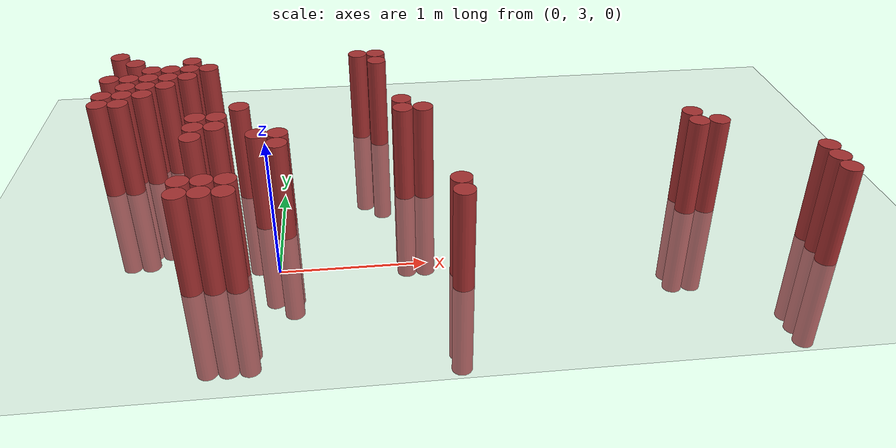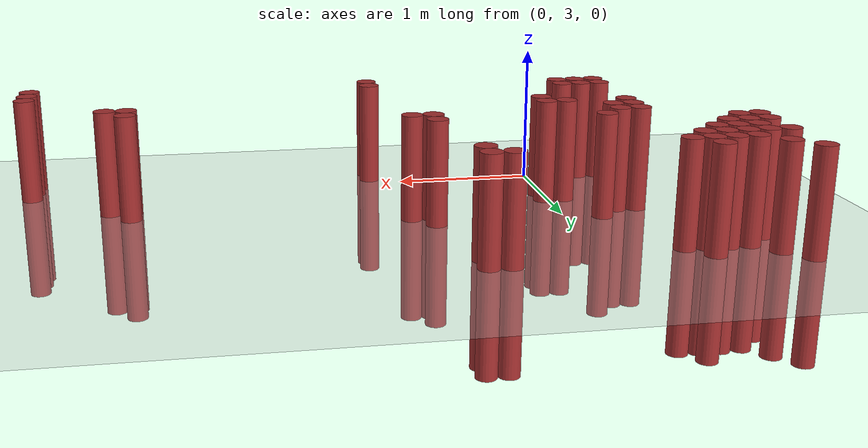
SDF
<sdf version="1.6">
 <world name="default">
  <model name="ground_plane">
   <static>1</static>
   <link name="link">
    <collision name="collision">
     <geometry><plane><normal>0 0 1</normal><size>100 100</size></plane></geometry>
     <surface><friction><ode><mu>100</mu><mu2>50</mu2></ode></friction></surface>
    </collision>
    <visual name="visual">
     <cast_shadows>0</cast_shadows>
     <geometry><plane><normal>0 0 1</normal><size>100 100</size></plane></geometry>
     <material>
      <script><uri>file://media/materials/scripts/gazebo.material</uri><name>Gazebo/Grey</name></script>
     </material>
    </visual>
   </link>
  </model>
  <model name="unit_cylinder_314">
   <static>1</static>
   <pose>-1.325000 4.225000 0.000000 0.000000 0.000000 0.000000</pose>
   <link name="link">
    <inertial>
     <mass>1</mass>
     <inertia><ixx>0.145833</ixx><ixy>0</ixy><ixz>0</ixz><iyy>0.145833</iyy><iyz>0</iyz><izz>0.125</izz></inertia>
    </inertial>
    <collision name="collision">
     <geometry><cylinder><radius>0.075000</radius><length>1.5</length></cylinder></geometry>
    </collision>
    <visual name="visual">
     <geometry><cylinder><radius>0.075000</radius><length>1.5</length></cylinder></geometry>
     <material>
      <ambient>0.648000 0.192000 0.192000 1</ambient>
      <diffuse>0.648000 0.192000 0.192000 1</diffuse>
     </material>
     <material>
      <script><name>Gazebo/Grey</name><uri>file://media/materials/scripts/gazebo.material</uri></script>
     </material>
    </visual>
   </link>
  </model>
  <model name="unit_cylinder_315">
   <static>1</static>
   <pose>-1.325000 4.375000 0.000000 0.000000 0.000000 0.000000</pose>
   <link name="link">
    <inertial>
     <mass>1</mass>
     <inertia><ixx>0.145833</ixx><ixy>0</ixy><ixz>0</ixz><iyy>0.145833</iyy><iyz>0</iyz><izz>0.125</izz></inertia>
    </inertial>
    <collision name="collision">
     <geometry><cylinder><radius>0.075000</radius><length>1.5</length></cylinder></geometry>
    </collision>
    <visual name="visual">
     <geometry><cylinder><radius>0.075000</radius><length>1.5</length></cylinder></geometry>
     <material>
      <ambient>0.648000 0.192000 0.192000 1</ambient>
      <diffuse>0.648000 0.192000 0.192000 1</diffuse>
     </material>
     <material>
      <script><name>Gazebo/Grey</name><uri>file://media/materials/scripts/gazebo.material</uri></script>
     </material>
    </visual>
   </link>
  </model>
  <model name="unit_cylinder_316">
   <static>1</static>
   <pose>-1.325000 4.675000 0.000000 0.000000 0.000000 0.000000</pose>
   <link name="link">
    <inertial>
     <mass>1</mass>
     <inertia><ixx>0.145833</ixx><ixy>0</ixy><ixz>0</ixz><iyy>0.145833</iyy><iyz>0</iyz><izz>0.125</izz></inertia>
    </inertial>
    <collision name="collision">
     <geometry><cylinder><radius>0.075000</radius><length>1.5</length></cylinder></geometry>
    </collision>
    <visual name="visual">
     <geometry><cylinder><radius>0.075000</radius><length>1.5</length></cylinder></geometry>
     <material>
      <ambient>0.648000 0.192000 0.192000 1</ambient>
      <diffuse>0.648000 0.192000 0.192000 1</diffuse>
     </material>
     <material>
      <script><name>Gazebo/Grey</name><uri>file://media/materials/scripts/gazebo.material</uri></script>
     </material>
    </visual>
   </link>
  </model>
  <model name="unit_cylinder_317">
   <static>1</static>
   <pose>-1.325000 5.125000 0.000000 0.000000 0.000000 0.000000</pose>
   <link name="link">
    <inertial>
     <mass>1</mass>
     <inertia><ixx>0.145833</ixx><ixy>0</ixy><ixz>0</ixz><iyy>0.145833</iyy><iyz>0</iyz><izz>0.125</izz></inertia>
    </inertial>
    <collision name="collision">
     <geometry><cylinder><radius>0.075000</radius><length>1.5</length></cylinder></geometry>
    </collision>
    <visual name="visual">
     <geometry><cylinder><radius>0.075000</radius><length>1.5</length></cylinder></geometry>
     <material>
      <ambient>0.648000 0.192000 0.192000 1</ambient>
      <diffuse>0.648000 0.192000 0.192000 1</diffuse>
     </material>
     <material>
      <script><name>Gazebo/Grey</name><uri>file://media/materials/scripts/gazebo.material</uri></script>
     </material>
    </visual>
   </link>
  </model>
  <model name="unit_cylinder_320">
   <static>1</static>
   <pose>-1.175000 4.225000 0.000000 0.000000 0.000000 0.000000</pose>
   <link name="link">
    <inertial>
     <mass>1</mass>
     <inertia><ixx>0.145833</ixx><ixy>0</ixy><ixz>0</ixz><iyy>0.145833</iyy><iyz>0</iyz><izz>0.125</izz></inertia>
    </inertial>
    <collision name="collision">
     <geometry><cylinder><radius>0.075000</radius><length>1.5</length></cylinder></geometry>
    </collision>
    <visual name="visual">
     <geometry><cylinder><radius>0.075000</radius><length>1.5</length></cylinder></geometry>
     <material>
      <ambient>0.648000 0.192000 0.192000 1</ambient>
      <diffuse>0.648000 0.192000 0.192000 1</diffuse>
     </material>
     <material>
      <script><name>Gazebo/Grey</name><uri>file://media/materials/scripts/gazebo.material</uri></script>
     </material>
    </visual>
   </link>
  </model>
  <model name="unit_cylinder_321">
   <static>1</static>
   <pose>-1.175000 4.375000 0.000000 0.000000 0.000000 0.000000</pose>
   <link name="link">
    <inertial>
     <mass>1</mass>
     <inertia><ixx>0.145833</ixx><ixy>0</ixy><ixz>0</ixz><iyy>0.145833</iyy><iyz>0</iyz><izz>0.125</izz></inertia>
    </inertial>
    <collision name="collision">
     <geometry><cylinder><radius>0.075000</radius><length>1.5</length></cylinder></geometry>
    </collision>
    <visual name="visual">
     <geometry><cylinder><radius>0.075000</radius><length>1.5</length></cylinder></geometry>
     <material>
      <ambient>0.648000 0.192000 0.192000 1</ambient>
      <diffuse>0.648000 0.192000 0.192000 1</diffuse>
     </material>
     <material>
      <script><name>Gazebo/Grey</name><uri>file://media/materials/scripts/gazebo.material</uri></script>
     </material>
    </visual>
   </link>
  </model>
  <model name="unit_cylinder_322">
   <static>1</static>
   <pose>-1.175000 4.525000 0.000000 0.000000 0.000000 0.000000</pose>
   <link name="link">
    <inertial>
     <mass>1</mass>
     <inertia><ixx>0.145833</ixx><ixy>0</ixy><ixz>0</ixz><iyy>0.145833</iyy><iyz>0</iyz><izz>0.125</izz></inertia>
    </inertial>
    <collision name="collision">
     <geometry><cylinder><radius>0.075000</radius><length>1.5</length></cylinder></geometry>
    </collision>
    <visual name="visual">
     <geometry><cylinder><radius>0.075000</radius><length>1.5</length></cylinder></geometry>
     <material>
      <ambient>0.648000 0.192000 0.192000 1</ambient>
      <diffuse>0.648000 0.192000 0.192000 1</diffuse>
     </material>
     <material>
      <script><name>Gazebo/Grey</name><uri>file://media/materials/scripts/gazebo.material</uri></script>
     </material>
    </visual>
   </link>
  </model>
  <model name="unit_cylinder_323">
   <static>1</static>
   <pose>-1.175000 4.675000 0.000000 0.000000 0.000000 0.000000</pose>
   <link name="link">
    <inertial>
     <mass>1</mass>
     <inertia><ixx>0.145833</ixx><ixy>0</ixy><ixz>0</ixz><iyy>0.145833</iyy><iyz>0</iyz><izz>0.125</izz></inertia>
    </inertial>
    <collision name="collision">
     <geometry><cylinder><radius>0.075000</radius><length>1.5</length></cylinder></geometry>
    </collision>
    <visual name="visual">
     <geometry><cylinder><radius>0.075000</radius><length>1.5</length></cylinder></geometry>
     <material>
      <ambient>0.648000 0.192000 0.192000 1</ambient>
      <diffuse>0.648000 0.192000 0.192000 1</diffuse>
     </material>
     <material>
      <script><name>Gazebo/Grey</name><uri>file://media/materials/scripts/gazebo.material</uri></script>
     </material>
    </visual>
   </link>
  </model>
  <model name="unit_cylinder_324">
   <static>1</static>
   <pose>-1.175000 4.975000 0.000000 0.000000 0.000000 0.000000</pose>
   <link name="link">
    <inertial>
     <mass>1</mass>
     <inertia><ixx>0.145833</ixx><ixy>0</ixy><ixz>0</ixz><iyy>0.145833</iyy><iyz>0</iyz><izz>0.125</izz></inertia>
    </inertial>
    <collision name="collision">
     <geometry><cylinder><radius>0.075000</radius><length>1.5</length></cylinder></geometry>
    </collision>
    <visual name="visual">
     <geometry><cylinder><radius>0.075000</radius><length>1.5</length></cylinder></geometry>
     <material>
      <ambient>0.648000 0.192000 0.192000 1</ambient>
      <diffuse>0.648000 0.192000 0.192000 1</diffuse>
     </material>
     <material>
      <script><name>Gazebo/Grey</name><uri>file://media/materials/scripts/gazebo.material</uri></script>
     </material>
    </visual>
   </link>
  </model>
  <model name="unit_cylinder_326">
   <static>1</static>
   <pose>-1.025000 4.375000 0.000000 0.000000 0.000000 0.000000</pose>
   <link name="link">
    <inertial>
     <mass>1</mass>
     <inertia><ixx>0.145833</ixx><ixy>0</ixy><ixz>0</ixz><iyy>0.145833</iyy><iyz>0</iyz><izz>0.125</izz></inertia>
    </inertial>
    <collision name="collision">
     <geometry><cylinder><radius>0.075000</radius><length>1.5</length></cylinder></geometry>
    </collision>
    <visual name="visual">
     <geometry><cylinder><radius>0.075000</radius><length>1.5</length></cylinder></geometry>
     <material>
      <ambient>0.648000 0.192000 0.192000 1</ambient>
      <diffuse>0.648000 0.192000 0.192000 1</diffuse>
     </material>
     <material>
      <script><name>Gazebo/Grey</name><uri>file://media/materials/scripts/gazebo.material</uri></script>
     </material>
    </visual>
   </link>
  </model>
  <model name="unit_cylinder_327">
   <static>1</static>
   <pose>-1.025000 4.525000 0.000000 0.000000 0.000000 0.000000</pose>
   <link name="link">
    <inertial>
     <mass>1</mass>
     <inertia><ixx>0.145833</ixx><ixy>0</ixy><ixz>0</ixz><iyy>0.145833</iyy><iyz>0</iyz><izz>0.125</izz></inertia>
    </inertial>
    <collision name="collision">
     <geometry><cylinder><radius>0.075000</radius><length>1.5</length></cylinder></geometry>
    </collision>
    <visual name="visual">
     <geometry><cylinder><radius>0.075000</radius><length>1.5</length></cylinder></geometry>
     <material>
      <ambient>0.648000 0.192000 0.192000 1</ambient>
      <diffuse>0.648000 0.192000 0.192000 1</diffuse>
     </material>
     <material>
      <script><name>Gazebo/Grey</name><uri>file://media/materials/scripts/gazebo.material</uri></script>
     </material>
    </visual>
   </link>
  </model>
  <model name="unit_cylinder_328">
   <static>1</static>
   <pose>-1.025000 4.675000 0.000000 0.000000 0.000000 0.000000</pose>
   <link name="link">
    <inertial>
     <mass>1</mass>
     <inertia><ixx>0.145833</ixx><ixy>0</ixy><ixz>0</ixz><iyy>0.145833</iyy><iyz>0</iyz><izz>0.125</izz></inertia>
    </inertial>
    <collision name="collision">
     <geometry><cylinder><radius>0.075000</radius><length>1.5</length></cylinder></geometry>
    </collision>
    <visual name="visual">
     <geometry><cylinder><radius>0.075000</radius><length>1.5</length></cylinder></geometry>
     <material>
      <ambient>0.648000 0.192000 0.192000 1</ambient>
      <diffuse>0.648000 0.192000 0.192000 1</diffuse>
     </material>
     <material>
      <script><name>Gazebo/Grey</name><uri>file://media/materials/scripts/gazebo.material</uri></script>
     </material>
    </visual>
   </link>
  </model>
  <model name="unit_cylinder_329">
   <static>1</static>
   <pose>-1.025000 4.825000 0.000000 0.000000 0.000000 0.000000</pose>
   <link name="link">
    <inertial>
     <mass>1</mass>
     <inertia><ixx>0.145833</ixx><ixy>0</ixy><ixz>0</ixz><iyy>0.145833</iyy><iyz>0</iyz><izz>0.125</izz></inertia>
    </inertial>
    <collision name="collision">
     <geometry><cylinder><radius>0.075000</radius><length>1.5</length></cylinder></geometry>
    </collision>
    <visual name="visual">
     <geometry><cylinder><radius>0.075000</radius><length>1.5</length></cylinder></geometry>
     <material>
      <ambient>0.648000 0.192000 0.192000 1</ambient>
      <diffuse>0.648000 0.192000 0.192000 1</diffuse>
     </material>
     <material>
      <script><name>Gazebo/Grey</name><uri>file://media/materials/scripts/gazebo.material</uri></script>
     </material>
    </visual>
   </link>
  </model>
  <model name="unit_cylinder_331">
   <static>1</static>
   <pose>-0.875000 4.525000 0.000000 0.000000 0.000000 0.000000</pose>
   <link name="link">
    <inertial>
     <mass>1</mass>
     <inertia><ixx>0.145833</ixx><ixy>0</ixy><ixz>0</ixz><iyy>0.145833</iyy><iyz>0</iyz><izz>0.125</izz></inertia>
    </inertial>
    <collision name="collision">
     <geometry><cylinder><radius>0.075000</radius><length>1.5</length></cylinder></geometry>
    </collision>
    <visual name="visual">
     <geometry><cylinder><radius>0.075000</radius><length>1.5</length></cylinder></geometry>
     <material>
      <ambient>0.648000 0.192000 0.192000 1</ambient>
      <diffuse>0.648000 0.192000 0.192000 1</diffuse>
     </material>
     <material>
      <script><name>Gazebo/Grey</name><uri>file://media/materials/scripts/gazebo.material</uri></script>
     </material>
    </visual>
   </link>
  </model>
  <model name="unit_cylinder_332">
   <static>1</static>
   <pose>-0.875000 4.675000 0.000000 0.000000 0.000000 0.000000</pose>
   <link name="link">
    <inertial>
     <mass>1</mass>
     <inertia><ixx>0.145833</ixx><ixy>0</ixy><ixz>0</ixz><iyy>0.145833</iyy><iyz>0</iyz><izz>0.125</izz></inertia>
    </inertial>
    <collision name="collision">
     <geometry><cylinder><radius>0.075000</radius><length>1.5</length></cylinder></geometry>
    </collision>
    <visual name="visual">
     <geometry><cylinder><radius>0.075000</radius><length>1.5</length></cylinder></geometry>
     <material>
      <ambient>0.648000 0.192000 0.192000 1</ambient>
      <diffuse>0.648000 0.192000 0.192000 1</diffuse>
     </material>
     <material>
      <script><name>Gazebo/Grey</name><uri>file://media/materials/scripts/gazebo.material</uri></script>
     </material>
    </visual>
   </link>
  </model>
  <model name="unit_cylinder_333">
   <static>1</static>
   <pose>-0.875000 4.825000 0.000000 0.000000 0.000000 0.000000</pose>
   <link name="link">
    <inertial>
     <mass>1</mass>
     <inertia><ixx>0.145833</ixx><ixy>0</ixy><ixz>0</ixz><iyy>0.145833</iyy><iyz>0</iyz><izz>0.125</izz></inertia>
    </inertial>
    <collision name="collision">
     <geometry><cylinder><radius>0.075000</radius><length>1.5</length></cylinder></geometry>
    </collision>
    <visual name="visual">
     <geometry><cylinder><radius>0.075000</radius><length>1.5</length></cylinder></geometry>
     <material>
      <ambient>0.648000 0.192000 0.192000 1</ambient>
      <diffuse>0.648000 0.192000 0.192000 1</diffuse>
     </material>
     <material>
      <script><name>Gazebo/Grey</name><uri>file://media/materials/scripts/gazebo.material</uri></script>
     </material>
    </visual>
   </link>
  </model>
  <model name="unit_cylinder_334">
   <static>1</static>
   <pose>-0.725000 4.675000 0.000000 0.000000 0.000000 0.000000</pose>
   <link name="link">
    <inertial>
     <mass>1</mass>
     <inertia><ixx>0.145833</ixx><ixy>0</ixy><ixz>0</ixz><iyy>0.145833</iyy><iyz>0</iyz><izz>0.125</izz></inertia>
    </inertial>
    <collision name="collision">
     <geometry><cylinder><radius>0.075000</radius><length>1.5</length></cylinder></geometry>
    </collision>
    <visual name="visual">
     <geometry><cylinder><radius>0.075000</radius><length>1.5</length></cylinder></geometry>
     <material>
      <ambient>0.648000 0.192000 0.192000 1</ambient>
      <diffuse>0.648000 0.192000 0.192000 1</diffuse>
     </material>
     <material>
      <script><name>Gazebo/Grey</name><uri>file://media/materials/scripts/gazebo.material</uri></script>
     </material>
    </visual>
   </link>
  </model>
  <model name="unit_cylinder_335">
   <static>1</static>
   <pose>-0.725000 4.825000 0.000000 0.000000 0.000000 0.000000</pose>
   <link name="link">
    <inertial>
     <mass>1</mass>
     <inertia><ixx>0.145833</ixx><ixy>0</ixy><ixz>0</ixz><iyy>0.145833</iyy><iyz>0</iyz><izz>0.125</izz></inertia>
    </inertial>
    <collision name="collision">
     <geometry><cylinder><radius>0.075000</radius><length>1.5</length></cylinder></geometry>
    </collision>
    <visual name="visual">
     <geometry><cylinder><radius>0.075000</radius><length>1.5</length></cylinder></geometry>
     <material>
      <ambient>0.648000 0.192000 0.192000 1</ambient>
      <diffuse>0.648000 0.192000 0.192000 1</diffuse>
     </material>
     <material>
      <script><name>Gazebo/Grey</name><uri>file://media/materials/scripts/gazebo.material</uri></script>
     </material>
    </visual>
   </link>
  </model>
  <model name="unit_cylinder_336">
   <static>1</static>
   <pose>-0.725000 4.975000 0.000000 0.000000 0.000000 0.000000</pose>
   <link name="link">
    <inertial>
     <mass>1</mass>
     <inertia><ixx>0.145833</ixx><ixy>0</ixy><ixz>0</ixz><iyy>0.145833</iyy><iyz>0</iyz><izz>0.125</izz></inertia>
    </inertial>
    <collision name="collision">
     <geometry><cylinder><radius>0.075000</radius><length>1.5</length></cylinder></geometry>
    </collision>
    <visual name="visual">
     <geometry><cylinder><radius>0.075000</radius><length>1.5</length></cylinder></geometry>
     <material>
      <ambient>0.648000 0.192000 0.192000 1</ambient>
      <diffuse>0.648000 0.192000 0.192000 1</diffuse>
     </material>
     <material>
      <script><name>Gazebo/Grey</name><uri>file://media/materials/scripts/gazebo.material</uri></script>
     </material>
    </visual>
   </link>
  </model>
  <model name="unit_cylinder_337">
   <static>1</static>
   <pose>-0.575000 2.875000 0.000000 0.000000 0.000000 0.000000</pose>
   <link name="link">
    <inertial>
     <mass>1</mass>
     <inertia><ixx>0.145833</ixx><ixy>0</ixy><ixz>0</ixz><iyy>0.145833</iyy><iyz>0</iyz><izz>0.125</izz></inertia>
    </inertial>
    <collision name="collision">
     <geometry><cylinder><radius>0.075000</radius><length>1.5</length></cylinder></geometry>
    </collision>
    <visual name="visual">
     <geometry><cylinder><radius>0.075000</radius><length>1.5</length></cylinder></geometry>
     <material>
      <ambient>0.648000 0.192000 0.192000 1</ambient>
      <diffuse>0.648000 0.192000 0.192000 1</diffuse>
     </material>
     <material>
      <script><name>Gazebo/Grey</name><uri>file://media/materials/scripts/gazebo.material</uri></script>
     </material>
    </visual>
   </link>
  </model>
  <model name="unit_cylinder_338">
   <static>1</static>
   <pose>-0.575000 3.025000 0.000000 0.000000 0.000000 0.000000</pose>
   <link name="link">
    <inertial>
     <mass>1</mass>
     <inertia><ixx>0.145833</ixx><ixy>0</ixy><ixz>0</ixz><iyy>0.145833</iyy><iyz>0</iyz><izz>0.125</izz></inertia>
    </inertial>
    <collision name="collision">
     <geometry><cylinder><radius>0.075000</radius><length>1.5</length></cylinder></geometry>
    </collision>
    <visual name="visual">
     <geometry><cylinder><radius>0.075000</radius><length>1.5</length></cylinder></geometry>
     <material>
      <ambient>0.648000 0.192000 0.192000 1</ambient>
      <diffuse>0.648000 0.192000 0.192000 1</diffuse>
     </material>
     <material>
      <script><name>Gazebo/Grey</name><uri>file://media/materials/scripts/gazebo.material</uri></script>
     </material>
    </visual>
   </link>
  </model>
  <model name="unit_cylinder_339">
   <static>1</static>
   <pose>-0.575000 3.625000 0.000000 0.000000 0.000000 0.000000</pose>
   <link name="link">
    <inertial>
     <mass>1</mass>
     <inertia><ixx>0.145833</ixx><ixy>0</ixy><ixz>0</ixz><iyy>0.145833</iyy><iyz>0</iyz><izz>0.125</izz></inertia>
    </inertial>
    <collision name="collision">
     <geometry><cylinder><radius>0.075000</radius><length>1.5</length></cylinder></geometry>
    </collision>
    <visual name="visual">
     <geometry><cylinder><radius>0.075000</radius><length>1.5</length></cylinder></geometry>
     <material>
      <ambient>0.648000 0.192000 0.192000 1</ambient>
      <diffuse>0.648000 0.192000 0.192000 1</diffuse>
     </material>
     <material>
      <script><name>Gazebo/Grey</name><uri>file://media/materials/scripts/gazebo.material</uri></script>
     </material>
    </visual>
   </link>
  </model>
  <model name="unit_cylinder_340">
   <static>1</static>
   <pose>-0.575000 3.775000 0.000000 0.000000 0.000000 0.000000</pose>
   <link name="link">
    <inertial>
     <mass>1</mass>
     <inertia><ixx>0.145833</ixx><ixy>0</ixy><ixz>0</ixz><iyy>0.145833</iyy><iyz>0</iyz><izz>0.125</izz></inertia>
    </inertial>
    <collision name="collision">
     <geometry><cylinder><radius>0.075000</radius><length>1.5</length></cylinder></geometry>
    </collision>
    <visual name="visual">
     <geometry><cylinder><radius>0.075000</radius><length>1.5</length></cylinder></geometry>
     <material>
      <ambient>0.648000 0.192000 0.192000 1</ambient>
      <diffuse>0.648000 0.192000 0.192000 1</diffuse>
     </material>
     <material>
      <script><name>Gazebo/Grey</name><uri>file://media/materials/scripts/gazebo.material</uri></script>
     </material>
    </visual>
   </link>
  </model>
  <model name="unit_cylinder_341">
   <static>1</static>
   <pose>-0.575000 3.925000 0.000000 0.000000 0.000000 0.000000</pose>
   <link name="link">
    <inertial>
     <mass>1</mass>
     <inertia><ixx>0.145833</ixx><ixy>0</ixy><ixz>0</ixz><iyy>0.145833</iyy><iyz>0</iyz><izz>0.125</izz></inertia>
    </inertial>
    <collision name="collision">
     <geometry><cylinder><radius>0.075000</radius><length>1.5</length></cylinder></geometry>
    </collision>
    <visual name="visual">
     <geometry><cylinder><radius>0.075000</radius><length>1.5</length></cylinder></geometry>
     <material>
      <ambient>0.648000 0.192000 0.192000 1</ambient>
      <diffuse>0.648000 0.192000 0.192000 1</diffuse>
     </material>
     <material>
      <script><name>Gazebo/Grey</name><uri>file://media/materials/scripts/gazebo.material</uri></script>
     </material>
    </visual>
   </link>
  </model>
  <model name="unit_cylinder_342">
   <static>1</static>
   <pose>-0.575000 4.825000 0.000000 0.000000 0.000000 0.000000</pose>
   <link name="link">
    <inertial>
     <mass>1</mass>
     <inertia><ixx>0.145833</ixx><ixy>0</ixy><ixz>0</ixz><iyy>0.145833</iyy><iyz>0</iyz><izz>0.125</izz></inertia>
    </inertial>
    <collision name="collision">
     <geometry><cylinder><radius>0.075000</radius><length>1.5</length></cylinder></geometry>
    </collision>
    <visual name="visual">
     <geometry><cylinder><radius>0.075000</radius><length>1.5</length></cylinder></geometry>
     <material>
      <ambient>0.648000 0.192000 0.192000 1</ambient>
      <diffuse>0.648000 0.192000 0.192000 1</diffuse>
     </material>
     <material>
      <script><name>Gazebo/Grey</name><uri>file://media/materials/scripts/gazebo.material</uri></script>
     </material>
    </visual>
   </link>
  </model>
  <model name="unit_cylinder_343">
   <static>1</static>
   <pose>-0.425000 2.875000 0.000000 0.000000 0.000000 0.000000</pose>
   <link name="link">
    <inertial>
     <mass>1</mass>
     <inertia><ixx>0.145833</ixx><ixy>0</ixy><ixz>0</ixz><iyy>0.145833</iyy><iyz>0</iyz><izz>0.125</izz></inertia>
    </inertial>
    <collision name="collision">
     <geometry><cylinder><radius>0.075000</radius><length>1.5</length></cylinder></geometry>
    </collision>
    <visual name="visual">
     <geometry><cylinder><radius>0.075000</radius><length>1.5</length></cylinder></geometry>
     <material>
      <ambient>0.648000 0.192000 0.192000 1</ambient>
      <diffuse>0.648000 0.192000 0.192000 1</diffuse>
     </material>
     <material>
      <script><name>Gazebo/Grey</name><uri>file://media/materials/scripts/gazebo.material</uri></script>
     </material>
    </visual>
   </link>
  </model>
  <model name="unit_cylinder_344">
   <static>1</static>
   <pose>-0.425000 3.025000 0.000000 0.000000 0.000000 0.000000</pose>
   <link name="link">
    <inertial>
     <mass>1</mass>
     <inertia><ixx>0.145833</ixx><ixy>0</ixy><ixz>0</ixz><iyy>0.145833</iyy><iyz>0</iyz><izz>0.125</izz></inertia>
    </inertial>
    <collision name="collision">
     <geometry><cylinder><radius>0.075000</radius><length>1.5</length></cylinder></geometry>
    </collision>
    <visual name="visual">
     <geometry><cylinder><radius>0.075000</radius><length>1.5</length></cylinder></geometry>
     <material>
      <ambient>0.648000 0.192000 0.192000 1</ambient>
      <diffuse>0.648000 0.192000 0.192000 1</diffuse>
     </material>
     <material>
      <script><name>Gazebo/Grey</name><uri>file://media/materials/scripts/gazebo.material</uri></script>
     </material>
    </visual>
   </link>
  </model>
  <model name="unit_cylinder_345">
   <static>1</static>
   <pose>-0.425000 3.775000 0.000000 0.000000 0.000000 0.000000</pose>
   <link name="link">
    <inertial>
     <mass>1</mass>
     <inertia><ixx>0.145833</ixx><ixy>0</ixy><ixz>0</ixz><iyy>0.145833</iyy><iyz>0</iyz><izz>0.125</izz></inertia>
    </inertial>
    <collision name="collision">
     <geometry><cylinder><radius>0.075000</radius><length>1.5</length></cylinder></geometry>
    </collision>
    <visual name="visual">
     <geometry><cylinder><radius>0.075000</radius><length>1.5</length></cylinder></geometry>
     <material>
      <ambient>0.648000 0.192000 0.192000 1</ambient>
      <diffuse>0.648000 0.192000 0.192000 1</diffuse>
     </material>
     <material>
      <script><name>Gazebo/Grey</name><uri>file://media/materials/scripts/gazebo.material</uri></script>
     </material>
    </visual>
   </link>
  </model>
  <model name="unit_cylinder_346">
   <static>1</static>
   <pose>-0.425000 3.925000 0.000000 0.000000 0.000000 0.000000</pose>
   <link name="link">
    <inertial>
     <mass>1</mass>
     <inertia><ixx>0.145833</ixx><ixy>0</ixy><ixz>0</ixz><iyy>0.145833</iyy><iyz>0</iyz><izz>0.125</izz></inertia>
    </inertial>
    <collision name="collision">
     <geometry><cylinder><radius>0.075000</radius><length>1.5</length></cylinder></geometry>
    </collision>
    <visual name="visual">
     <geometry><cylinder><radius>0.075000</radius><length>1.5</length></cylinder></geometry>
     <material>
      <ambient>0.648000 0.192000 0.192000 1</ambient>
      <diffuse>0.648000 0.192000 0.192000 1</diffuse>
     </material>
     <material>
      <script><name>Gazebo/Grey</name><uri>file://media/materials/scripts/gazebo.material</uri></script>
     </material>
    </visual>
   </link>
  </model>
  <model name="unit_cylinder_347">
   <static>1</static>
   <pose>-0.275000 2.875000 0.000000 0.000000 0.000000 0.000000</pose>
   <link name="link">
    <inertial>
     <mass>1</mass>
     <inertia><ixx>0.145833</ixx><ixy>0</ixy><ixz>0</ixz><iyy>0.145833</iyy><iyz>0</iyz><izz>0.125</izz></inertia>
    </inertial>
    <collision name="collision">
     <geometry><cylinder><radius>0.075000</radius><length>1.5</length></cylinder></geometry>
    </collision>
    <visual name="visual">
     <geometry><cylinder><radius>0.075000</radius><length>1.5</length></cylinder></geometry>
     <material>
      <ambient>0.648000 0.192000 0.192000 1</ambient>
      <diffuse>0.648000 0.192000 0.192000 1</diffuse>
     </material>
     <material>
      <script><name>Gazebo/Grey</name><uri>file://media/materials/scripts/gazebo.material</uri></script>
     </material>
    </visual>
   </link>
  </model>
  <model name="unit_cylinder_348">
   <static>1</static>
   <pose>-0.275000 3.025000 0.000000 0.000000 0.000000 0.000000</pose>
   <link name="link">
    <inertial>
     <mass>1</mass>
     <inertia><ixx>0.145833</ixx><ixy>0</ixy><ixz>0</ixz><iyy>0.145833</iyy><iyz>0</iyz><izz>0.125</izz></inertia>
    </inertial>
    <collision name="collision">
     <geometry><cylinder><radius>0.075000</radius><length>1.5</length></cylinder></geometry>
    </collision>
    <visual name="visual">
     <geometry><cylinder><radius>0.075000</radius><length>1.5</length></cylinder></geometry>
     <material>
      <ambient>0.648000 0.192000 0.192000 1</ambient>
      <diffuse>0.648000 0.192000 0.192000 1</diffuse>
     </material>
     <material>
      <script><name>Gazebo/Grey</name><uri>file://media/materials/scripts/gazebo.material</uri></script>
     </material>
    </visual>
   </link>
  </model>
  <model name="unit_cylinder_349">
   <static>1</static>
   <pose>-0.275000 4.075000 0.000000 0.000000 0.000000 0.000000</pose>
   <link name="link">
    <inertial>
     <mass>1</mass>
     <inertia><ixx>0.145833</ixx><ixy>0</ixy><ixz>0</ixz><iyy>0.145833</iyy><iyz>0</iyz><izz>0.125</izz></inertia>
    </inertial>
    <collision name="collision">
     <geometry><cylinder><radius>0.075000</radius><length>1.5</length></cylinder></geometry>
    </collision>
    <visual name="visual">
     <geometry><cylinder><radius>0.075000</radius><length>1.5</length></cylinder></geometry>
     <material>
      <ambient>0.648000 0.192000 0.192000 1</ambient>
      <diffuse>0.648000 0.192000 0.192000 1</diffuse>
     </material>
     <material>
      <script><name>Gazebo/Grey</name><uri>file://media/materials/scripts/gazebo.material</uri></script>
     </material>
    </visual>
   </link>
  </model>
  <model name="unit_cylinder_351">
   <static>1</static>
   <pose>-0.125000 3.625000 0.000000 0.000000 0.000000 0.000000</pose>
   <link name="link">
    <inertial>
     <mass>1</mass>
     <inertia><ixx>0.145833</ixx><ixy>0</ixy><ixz>0</ixz><iyy>0.145833</iyy><iyz>0</iyz><izz>0.125</izz></inertia>
    </inertial>
    <collision name="collision">
     <geometry><cylinder><radius>0.075000</radius><length>1.5</length></cylinder></geometry>
    </collision>
    <visual name="visual">
     <geometry><cylinder><radius>0.075000</radius><length>1.5</length></cylinder></geometry>
     <material>
      <ambient>0.648000 0.192000 0.192000 1</ambient>
      <diffuse>0.648000 0.192000 0.192000 1</diffuse>
     </material>
     <material>
      <script><name>Gazebo/Grey</name><uri>file://media/materials/scripts/gazebo.material</uri></script>
     </material>
    </visual>
   </link>
  </model>
  <model name="unit_cylinder_354">
   <static>1</static>
   <pose>0.025000 3.475000 0.000000 0.000000 0.000000 0.000000</pose>
   <link name="link">
    <inertial>
     <mass>1</mass>
     <inertia><ixx>0.145833</ixx><ixy>0</ixy><ixz>0</ixz><iyy>0.145833</iyy><iyz>0</iyz><izz>0.125</izz></inertia>
    </inertial>
    <collision name="collision">
     <geometry><cylinder><radius>0.075000</radius><length>1.5</length></cylinder></geometry>
    </collision>
    <visual name="visual">
     <geometry><cylinder><radius>0.075000</radius><length>1.5</length></cylinder></geometry>
     <material>
      <ambient>0.648000 0.192000 0.192000 1</ambient>
      <diffuse>0.648000 0.192000 0.192000 1</diffuse>
     </material>
     <material>
      <script><name>Gazebo/Grey</name><uri>file://media/materials/scripts/gazebo.material</uri></script>
     </material>
    </visual>
   </link>
  </model>
  <model name="unit_cylinder_355">
   <static>1</static>
   <pose>0.025000 3.625000 0.000000 0.000000 0.000000 0.000000</pose>
   <link name="link">
    <inertial>
     <mass>1</mass>
     <inertia><ixx>0.145833</ixx><ixy>0</ixy><ixz>0</ixz><iyy>0.145833</iyy><iyz>0</iyz><izz>0.125</izz></inertia>
    </inertial>
    <collision name="collision">
     <geometry><cylinder><radius>0.075000</radius><length>1.5</length></cylinder></geometry>
    </collision>
    <visual name="visual">
     <geometry><cylinder><radius>0.075000</radius><length>1.5</length></cylinder></geometry>
     <material>
      <ambient>0.648000 0.192000 0.192000 1</ambient>
      <diffuse>0.648000 0.192000 0.192000 1</diffuse>
     </material>
     <material>
      <script><name>Gazebo/Grey</name><uri>file://media/materials/scripts/gazebo.material</uri></script>
     </material>
    </visual>
   </link>
  </model>
  <model name="unit_cylinder_379">
   <static>1</static>
   <pose>0.625000 4.975000 0.000000 0.000000 0.000000 0.000000</pose>
   <link name="link">
    <inertial>
     <mass>1</mass>
     <inertia><ixx>0.145833</ixx><ixy>0</ixy><ixz>0</ixz><iyy>0.145833</iyy><iyz>0</iyz><izz>0.125</izz></inertia>
    </inertial>
    <collision name="collision">
     <geometry><cylinder><radius>0.075000</radius><length>1.5</length></cylinder></geometry>
    </collision>
    <visual name="visual">
     <geometry><cylinder><radius>0.075000</radius><length>1.5</length></cylinder></geometry>
     <material>
      <ambient>0.648000 0.192000 0.192000 1</ambient>
      <diffuse>0.648000 0.192000 0.192000 1</diffuse>
     </material>
     <material>
      <script><name>Gazebo/Grey</name><uri>file://media/materials/scripts/gazebo.material</uri></script>
     </material>
    </visual>
   </link>
  </model>
  <model name="unit_cylinder_385">
   <static>1</static>
   <pose>0.775000 4.825000 0.000000 0.000000 0.000000 0.000000</pose>
   <link name="link">
    <inertial>
     <mass>1</mass>
     <inertia><ixx>0.145833</ixx><ixy>0</ixy><ixz>0</ixz><iyy>0.145833</iyy><iyz>0</iyz><izz>0.125</izz></inertia>
    </inertial>
    <collision name="collision">
     <geometry><cylinder><radius>0.075000</radius><length>1.5</length></cylinder></geometry>
    </collision>
    <visual name="visual">
     <geometry><cylinder><radius>0.075000</radius><length>1.5</length></cylinder></geometry>
     <material>
      <ambient>0.648000 0.192000 0.192000 1</ambient>
      <diffuse>0.648000 0.192000 0.192000 1</diffuse>
     </material>
     <material>
      <script><name>Gazebo/Grey</name><uri>file://media/materials/scripts/gazebo.material</uri></script>
     </material>
    </visual>
   </link>
  </model>
  <model name="unit_cylinder_386">
   <static>1</static>
   <pose>0.775000 4.975000 0.000000 0.000000 0.000000 0.000000</pose>
   <link name="link">
    <inertial>
     <mass>1</mass>
     <inertia><ixx>0.145833</ixx><ixy>0</ixy><ixz>0</ixz><iyy>0.145833</iyy><iyz>0</iyz><izz>0.125</izz></inertia>
    </inertial>
    <collision name="collision">
     <geometry><cylinder><radius>0.075000</radius><length>1.5</length></cylinder></geometry>
    </collision>
    <visual name="visual">
     <geometry><cylinder><radius>0.075000</radius><length>1.5</length></cylinder></geometry>
     <material>
      <ambient>0.648000 0.192000 0.192000 1</ambient>
      <diffuse>0.648000 0.192000 0.192000 1</diffuse>
     </material>
     <material>
      <script><name>Gazebo/Grey</name><uri>file://media/materials/scripts/gazebo.material</uri></script>
     </material>
    </visual>
   </link>
  </model>
  <model name="unit_cylinder_391">
   <static>1</static>
   <pose>0.925000 3.925000 0.000000 0.000000 0.000000 0.000000</pose>
   <link name="link">
    <inertial>
     <mass>1</mass>
     <inertia><ixx>0.145833</ixx><ixy>0</ixy><ixz>0</ixz><iyy>0.145833</iyy><iyz>0</iyz><izz>0.125</izz></inertia>
    </inertial>
    <collision name="collision">
     <geometry><cylinder><radius>0.075000</radius><length>1.5</length></cylinder></geometry>
    </collision>
    <visual name="visual">
     <geometry><cylinder><radius>0.075000</radius><length>1.5</length></cylinder></geometry>
     <material>
      <ambient>0.648000 0.192000 0.192000 1</ambient>
      <diffuse>0.648000 0.192000 0.192000 1</diffuse>
     </material>
     <material>
      <script><name>Gazebo/Grey</name><uri>file://media/materials/scripts/gazebo.material</uri></script>
     </material>
    </visual>
   </link>
  </model>
  <model name="unit_cylinder_392">
   <static>1</static>
   <pose>0.925000 4.075000 0.000000 0.000000 0.000000 0.000000</pose>
   <link name="link">
    <inertial>
     <mass>1</mass>
     <inertia><ixx>0.145833</ixx><ixy>0</ixy><ixz>0</ixz><iyy>0.145833</iyy><iyz>0</iyz><izz>0.125</izz></inertia>
    </inertial>
    <collision name="collision">
     <geometry><cylinder><radius>0.075000</radius><length>1.5</length></cylinder></geometry>
    </collision>
    <visual name="visual">
     <geometry><cylinder><radius>0.075000</radius><length>1.5</length></cylinder></geometry>
     <material>
      <ambient>0.648000 0.192000 0.192000 1</ambient>
      <diffuse>0.648000 0.192000 0.192000 1</diffuse>
     </material>
     <material>
      <script><name>Gazebo/Grey</name><uri>file://media/materials/scripts/gazebo.material</uri></script>
     </material>
    </visual>
   </link>
  </model>
  <model name="unit_cylinder_396">
   <static>1</static>
   <pose>1.075000 3.925000 0.000000 0.000000 0.000000 0.000000</pose>
   <link name="link">
    <inertial>
     <mass>1</mass>
     <inertia><ixx>0.145833</ixx><ixy>0</ixy><ixz>0</ixz><iyy>0.145833</iyy><iyz>0</iyz><izz>0.125</izz></inertia>
    </inertial>
    <collision name="collision">
     <geometry><cylinder><radius>0.075000</radius><length>1.5</length></cylinder></geometry>
    </collision>
    <visual name="visual">
     <geometry><cylinder><radius>0.075000</radius><length>1.5</length></cylinder></geometry>
     <material>
      <ambient>0.648000 0.192000 0.192000 1</ambient>
      <diffuse>0.648000 0.192000 0.192000 1</diffuse>
     </material>
     <material>
      <script><name>Gazebo/Grey</name><uri>file://media/materials/scripts/gazebo.material</uri></script>
     </material>
    </visual>
   </link>
  </model>
  <model name="unit_cylinder_399">
   <static>1</static>
   <pose>1.225000 2.725000 0.000000 0.000000 0.000000 0.000000</pose>
   <link name="link">
    <inertial>
     <mass>1</mass>
     <inertia><ixx>0.145833</ixx><ixy>0</ixy><ixz>0</ixz><iyy>0.145833</iyy><iyz>0</iyz><izz>0.125</izz></inertia>
    </inertial>
    <collision name="collision">
     <geometry><cylinder><radius>0.075000</radius><length>1.5</length></cylinder></geometry>
    </collision>
    <visual name="visual">
     <geometry><cylinder><radius>0.075000</radius><length>1.5</length></cylinder></geometry>
     <material>
      <ambient>0.648000 0.192000 0.192000 1</ambient>
      <diffuse>0.648000 0.192000 0.192000 1</diffuse>
     </material>
     <material>
      <script><name>Gazebo/Grey</name><uri>file://media/materials/scripts/gazebo.material</uri></script>
     </material>
    </visual>
   </link>
  </model>
  <model name="unit_cylinder_400">
   <static>1</static>
   <pose>1.225000 2.875000 0.000000 0.000000 0.000000 0.000000</pose>
   <link name="link">
    <inertial>
     <mass>1</mass>
     <inertia><ixx>0.145833</ixx><ixy>0</ixy><ixz>0</ixz><iyy>0.145833</iyy><iyz>0</iyz><izz>0.125</izz></inertia>
    </inertial>
    <collision name="collision">
     <geometry><cylinder><radius>0.075000</radius><length>1.5</length></cylinder></geometry>
    </collision>
    <visual name="visual">
     <geometry><cylinder><radius>0.075000</radius><length>1.5</length></cylinder></geometry>
     <material>
      <ambient>0.648000 0.192000 0.192000 1</ambient>
      <diffuse>0.648000 0.192000 0.192000 1</diffuse>
     </material>
     <material>
      <script><name>Gazebo/Grey</name><uri>file://media/materials/scripts/gazebo.material</uri></script>
     </material>
    </visual>
   </link>
  </model>
  <model name="unit_cylinder_422">
   <static>1</static>
   <pose>3.025000 3.475000 0.000000 0.000000 0.000000 0.000000</pose>
   <link name="link">
    <inertial>
     <mass>1</mass>
     <inertia><ixx>0.145833</ixx><ixy>0</ixy><ixz>0</ixz><iyy>0.145833</iyy><iyz>0</iyz><izz>0.125</izz></inertia>
    </inertial>
    <collision name="collision">
     <geometry><cylinder><radius>0.075000</radius><length>1.5</length></cylinder></geometry>
    </collision>
    <visual name="visual">
     <geometry><cylinder><radius>0.075000</radius><length>1.5</length></cylinder></geometry>
     <material>
      <ambient>0.648000 0.192000 0.192000 1</ambient>
      <diffuse>0.648000 0.192000 0.192000 1</diffuse>
     </material>
     <material>
      <script><name>Gazebo/Grey</name><uri>file://media/materials/scripts/gazebo.material</uri></script>
     </material>
    </visual>
   </link>
  </model>
  <model name="unit_cylinder_423">
   <static>1</static>
   <pose>3.025000 3.625000 0.000000 0.000000 0.000000 0.000000</pose>
   <link name="link">
    <inertial>
     <mass>1</mass>
     <inertia><ixx>0.145833</ixx><ixy>0</ixy><ixz>0</ixz><iyy>0.145833</iyy><iyz>0</iyz><izz>0.125</izz></inertia>
    </inertial>
    <collision name="collision">
     <geometry><cylinder><radius>0.075000</radius><length>1.5</length></cylinder></geometry>
    </collision>
    <visual name="visual">
     <geometry><cylinder><radius>0.075000</radius><length>1.5</length></cylinder></geometry>
     <material>
      <ambient>0.648000 0.192000 0.192000 1</ambient>
      <diffuse>0.648000 0.192000 0.192000 1</diffuse>
     </material>
     <material>
      <script><name>Gazebo/Grey</name><uri>file://media/materials/scripts/gazebo.material</uri></script>
     </material>
    </visual>
   </link>
  </model>
  <model name="unit_cylinder_427">
   <static>1</static>
   <pose>3.175000 3.475000 0.000000 0.000000 0.000000 0.000000</pose>
   <link name="link">
    <inertial>
     <mass>1</mass>
     <inertia><ixx>0.145833</ixx><ixy>0</ixy><ixz>0</ixz><iyy>0.145833</iyy><iyz>0</iyz><izz>0.125</izz></inertia>
    </inertial>
    <collision name="collision">
     <geometry><cylinder><radius>0.075000</radius><length>1.5</length></cylinder></geometry>
    </collision>
    <visual name="visual">
     <geometry><cylinder><radius>0.075000</radius><length>1.5</length></cylinder></geometry>
     <material>
      <ambient>0.648000 0.192000 0.192000 1</ambient>
      <diffuse>0.648000 0.192000 0.192000 1</diffuse>
     </material>
     <material>
      <script><name>Gazebo/Grey</name><uri>file://media/materials/scripts/gazebo.material</uri></script>
     </material>
    </visual>
   </link>
  </model>
  <model name="unit_cylinder_439">
   <static>1</static>
   <pose>3.775000 2.725000 0.000000 0.000000 0.000000 0.000000</pose>
   <link name="link">
    <inertial>
     <mass>1</mass>
     <inertia><ixx>0.145833</ixx><ixy>0</ixy><ixz>0</ixz><iyy>0.145833</iyy><iyz>0</iyz><izz>0.125</izz></inertia>
    </inertial>
    <collision name="collision">
     <geometry><cylinder><radius>0.075000</radius><length>1.5</length></cylinder></geometry>
    </collision>
    <visual name="visual">
     <geometry><cylinder><radius>0.075000</radius><length>1.5</length></cylinder></geometry>
     <material>
      <ambient>0.648000 0.192000 0.192000 1</ambient>
      <diffuse>0.648000 0.192000 0.192000 1</diffuse>
     </material>
     <material>
      <script><name>Gazebo/Grey</name><uri>file://media/materials/scripts/gazebo.material</uri></script>
     </material>
    </visual>
   </link>
  </model>
  <model name="unit_cylinder_440">
   <static>1</static>
   <pose>3.775000 2.875000 0.000000 0.000000 0.000000 0.000000</pose>
   <link name="link">
    <inertial>
     <mass>1</mass>
     <inertia><ixx>0.145833</ixx><ixy>0</ixy><ixz>0</ixz><iyy>0.145833</iyy><iyz>0</iyz><izz>0.125</izz></inertia>
    </inertial>
    <collision name="collision">
     <geometry><cylinder><radius>0.075000</radius><length>1.5</length></cylinder></geometry>
    </collision>
    <visual name="visual">
     <geometry><cylinder><radius>0.075000</radius><length>1.5</length></cylinder></geometry>
     <material>
      <ambient>0.648000 0.192000 0.192000 1</ambient>
      <diffuse>0.648000 0.192000 0.192000 1</diffuse>
     </material>
     <material>
      <script><name>Gazebo/Grey</name><uri>file://media/materials/scripts/gazebo.material</uri></script>
     </material>
    </visual>
   </link>
  </model>
  <model name="unit_cylinder_441">
   <static>1</static>
   <pose>3.775000 3.025000 0.000000 0.000000 0.000000 0.000000</pose>
   <link name="link">
    <inertial>
     <mass>1</mass>
     <inertia><ixx>0.145833</ixx><ixy>0</ixy><ixz>0</ixz><iyy>0.145833</iyy><iyz>0</iyz><izz>0.125</izz></inertia>
    </inertial>
    <collision name="collision">
     <geometry><cylinder><radius>0.075000</radius><length>1.5</length></cylinder></geometry>
    </collision>
    <visual name="visual">
     <geometry><cylinder><radius>0.075000</radius><length>1.5</length></cylinder></geometry>
     <material>
      <ambient>0.648000 0.192000 0.192000 1</ambient>
      <diffuse>0.648000 0.192000 0.192000 1</diffuse>
     </material>
     <material>
      <script><name>Gazebo/Grey</name><uri>file://media/materials/scripts/gazebo.material</uri></script>
     </material>
    </visual>
   </link>
  </model>
 </world>
</sdf>
